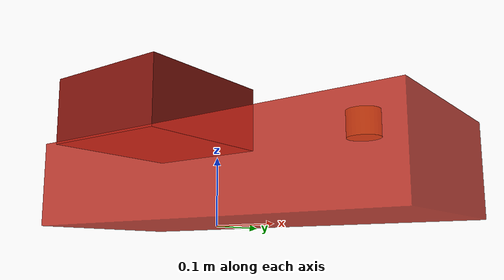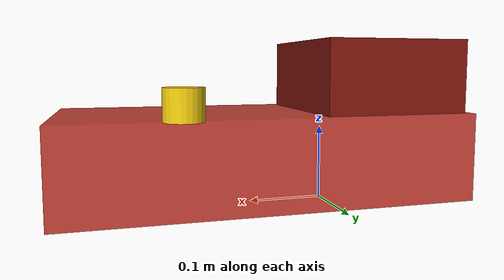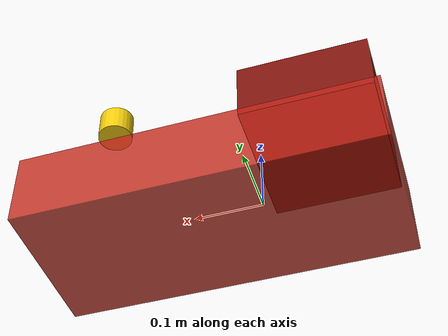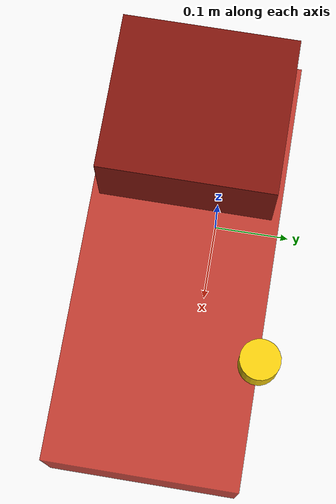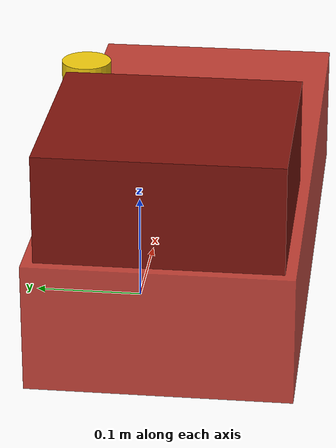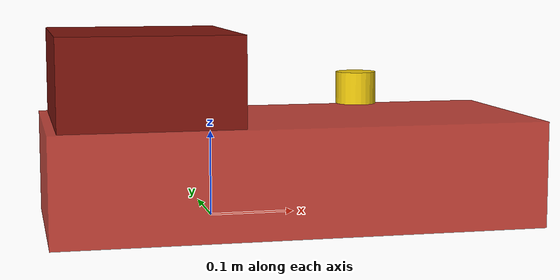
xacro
<?xml version="1.0"?>
<robot xmlns:xacro="http://www.ros.org/wiki/xacro" name="car">

  <!-- =============================== 位置参数 =============================== -->
  <xacro:arg name="x" default="0.08"/>   <!-- 底盘底部中心 X 坐标 (m) -->
  <xacro:arg name="y" default="-0.04"/>  <!-- 底盘底部中心 Y 坐标 (m) -->
  <xacro:arg name="z" default="0.00"/>   <!-- 底盘底部中心 Z 坐标 (m) -->

  <!-- 世界固定根链接 -->
  <link name="world"/>

  <!-- 底盘：固定于 world，origin 为底盘底部中心 -->
  <joint name="car_fixed" type="fixed">
    <parent link="world"/>
    <child  link="car_body"/>
    <origin xyz="$(arg x) $(arg y) $(arg z)" rpy="0 0 0"/>
  </joint>

  <!-- =============================== 底盘主体 =============================== -->
  <link name="car_body">
    <visual>
      <!-- origin 向 Z 偏移半高，使 box 底面与 joint origin 对齐 -->
      <origin xyz="0 0 0.06" rpy="0 0 0"/>
      <geometry>
        <box size="0.55 0.24 0.12"/>
      </geometry>
      <material name="car_red">
        <color rgba="0.75 0.15 0.10 0.85"/>
      </material>
    </visual>
    <collision>
      <origin xyz="0 0 0.06" rpy="0 0 0"/>
      <geometry>
        <box size="0.55 0.24 0.12"/>
      </geometry>
    </collision>
  </link>

  <!-- =============================== 驾驶室 =============================== -->
  <!--
    驾驶室位于车身前端（-x 方向）顶部，高于底盘顶面。
    joint origin 相对底盘底部中心偏移：x=-0.175（最前端偏内 0.10m），z=0.12（底盘顶面）
  -->
  <joint name="cab_joint" type="fixed">
    <parent link="car_body"/>
    <child  link="car_cab"/>
    <origin xyz="-0.165 0 0.12" rpy="0 0 0"/>
  </joint>

  <link name="car_cab">
    <visual>
      <origin xyz="0 0 0.05" rpy="0 0 0"/>
      <geometry>
        <box size="0.20 0.22 0.10"/>
      </geometry>
      <material name="cab_dark_red">
        <color rgba="0.50 0.08 0.05 0.90"/>
      </material>
    </visual>
  </link>

  <!-- =============================== 加油口 =============================== -->
  <!--
    加油口位于底盘前部靠机械臂一侧（+y），顶面（z=0.12）处。
    偏移：(0.12, 0.12, 0.12)，使绝对位置与 install_pose 对齐。
    圆柱轴默认沿 Z，无需旋转（加油口朝上）。
  -->
  <joint name="fuel_port_joint" type="fixed">
    <parent link="car_body"/>
    <child  link="fuel_port"/>
    <origin xyz="0.12 0.12 0.12" rpy="0 0 0"/>
  </joint>

  <link name="fuel_port">
    <visual>
      <origin xyz="0 0 0.02" rpy="0 0 0"/>
      <geometry>
        <cylinder radius="0.025" length="0.04"/>
      </geometry>
      <material name="port_yellow">
        <color rgba="0.95 0.80 0.05 1.00"/>
      </material>
    </visual>
    <collision>
      <origin xyz="0 0 0.02" rpy="0 0 0"/>
      <geometry>
        <cylinder radius="0.025" length="0.04"/>
      </geometry>
    </collision>
  </link>

</robot>
